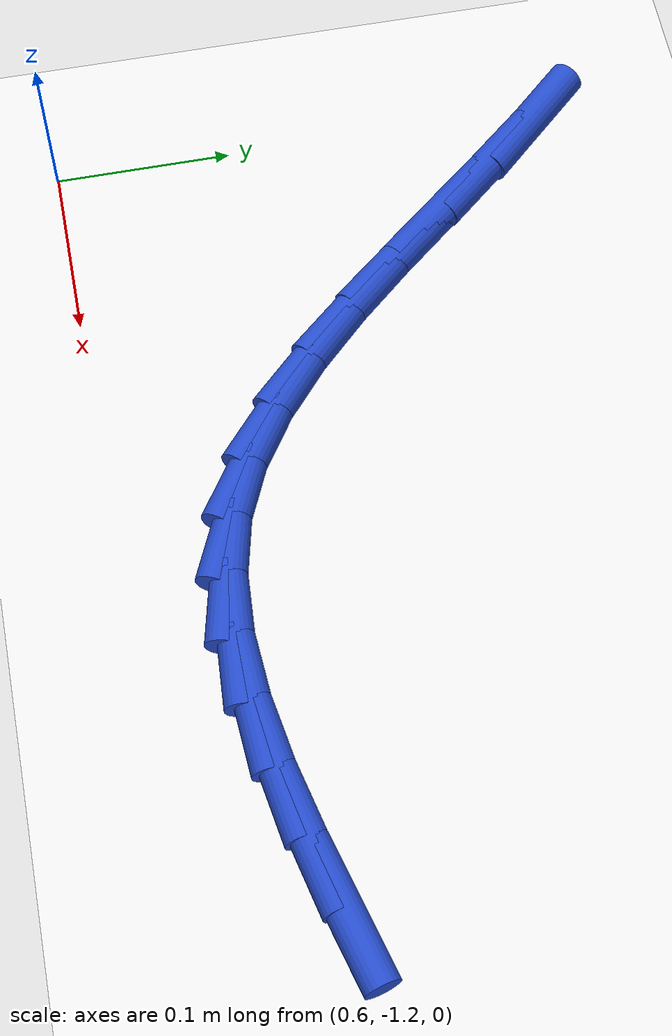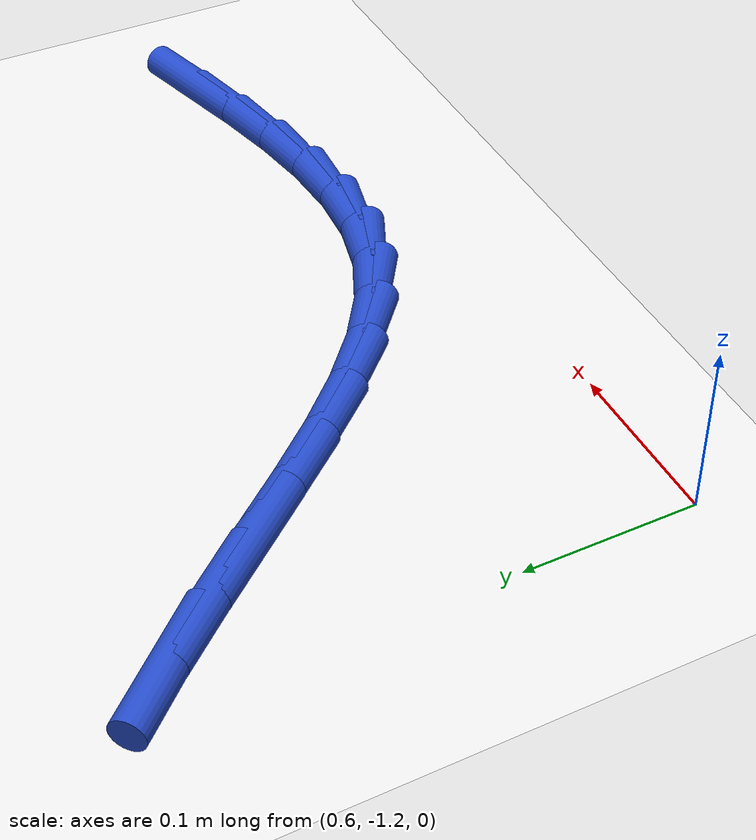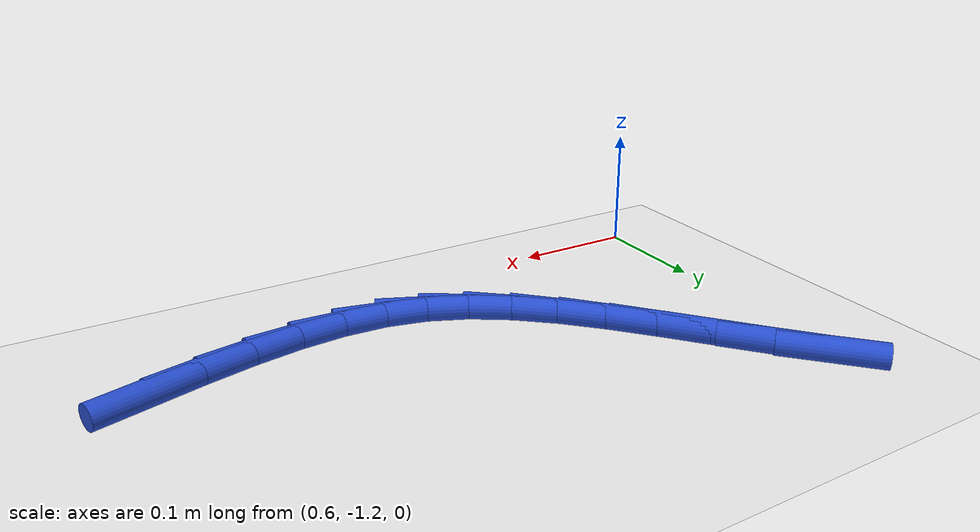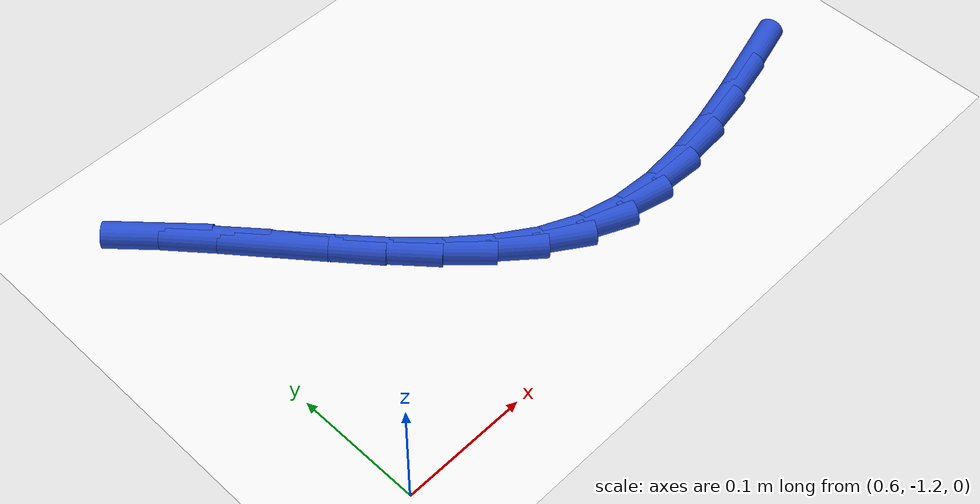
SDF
<sdf version="1.6">
 <world name="default">
  <model name="ground_plane">
   <static>1</static>
   <link name="link">
    <collision name="collision">
     <geometry><plane><normal>0 0 1</normal><size>100 100</size></plane></geometry>
     <surface><friction><ode><mu>100</mu><mu2>50</mu2></ode></friction></surface>
    </collision>
    <visual name="visual">
     <cast_shadows>0</cast_shadows>
     <geometry><plane><normal>0 0 1</normal><size>100 100</size></plane></geometry>
     <material>
      <script><uri>file://media/materials/scripts/gazebo.material</uri><name>Gazebo/WhiteGlow</name></script>
     </material>
    </visual>
   </link>
  </model>
  <model name="line">
   <link name="link_136">
    <pose>1.053739396247536 -1.1162604444174817 0.01 0 1.57 0.2706044850605791</pose>
    <collision name="collision">
     <geometry><cylinder><radius>0.01</radius><length>0.08</length></cylinder></geometry>
    </collision>
    <visual name="visual">
     <material>
      <script><name>Gazebo/Blue</name><uri>file://media/materials/scripts/gazebo.material</uri></script>
     </material>
     <geometry><cylinder><radius>0.01</radius><length>0.08</length></cylinder></geometry>
    </visual>
   </link>
   <link name="link_137">
    <pose>1.0143702502885477 -1.1271818010287915 0.01 0 1.57 0.23141501904220652</pose>
    <collision name="collision">
     <geometry><cylinder><radius>0.01</radius><length>0.08</length></cylinder></geometry>
    </collision>
    <visual name="visual">
     <material>
      <script><name>Gazebo/Blue</name><uri>file://media/materials/scripts/gazebo.material</uri></script>
     </material>
     <geometry><cylinder><radius>0.01</radius><length>0.08</length></cylinder></geometry>
    </visual>
   </link>
   <link name="link_138">
    <pose>0.9760477805646333 -1.1362119718581194 0.01 0 1.57 0.16646559746946743</pose>
    <collision name="collision">
     <geometry><cylinder><radius>0.01</radius><length>0.08</length></cylinder></geometry>
    </collision>
    <visual name="visual">
     <material>
      <script><name>Gazebo/Blue</name><uri>file://media/materials/scripts/gazebo.material</uri></script>
     </material>
     <geometry><cylinder><radius>0.01</radius><length>0.08</length></cylinder></geometry>
    </visual>
   </link>
   <link name="link_139">
    <pose>0.938943400566915 -1.142446267066984 0.01 0 1.57 0.07082459915335826</pose>
    <collision name="collision">
     <geometry><cylinder><radius>0.01</radius><length>0.08</length></cylinder></geometry>
    </collision>
    <visual name="visual">
     <material>
      <script><name>Gazebo/Blue</name><uri>file://media/materials/scripts/gazebo.material</uri></script>
     </material>
     <geometry><cylinder><radius>0.01</radius><length>0.08</length></cylinder></geometry>
    </visual>
   </link>
   <link name="link_140">
    <pose>0.9032285237865163 -1.1449799968169039 0.01 0 1.57 -0.060578361564184405</pose>
    <collision name="collision">
     <geometry><cylinder><radius>0.01</radius><length>0.08</length></cylinder></geometry>
    </collision>
    <visual name="visual">
     <material>
      <script><name>Gazebo/Blue</name><uri>file://media/materials/scripts/gazebo.material</uri></script>
     </material>
     <geometry><cylinder><radius>0.01</radius><length>0.08</length></cylinder></geometry>
    </visual>
   </link>
   <link name="link_141">
    <pose>0.86907456371456 -1.1429084712693982 0.01 0 1.57 -0.22971229024223547</pose>
    <collision name="collision">
     <geometry><cylinder><radius>0.01</radius><length>0.08</length></cylinder></geometry>
    </collision>
    <visual name="visual">
     <material>
      <script><name>Gazebo/Blue</name><uri>file://media/materials/scripts/gazebo.material</uri></script>
     </material>
     <geometry><cylinder><radius>0.01</radius><length>0.08</length></cylinder></geometry>
    </visual>
   </link>
   <link name="link_142">
    <pose>0.8366529338421691 -1.1353270005859852 0.01 0 1.57 -0.42273680012714526</pose>
    <collision name="collision">
     <geometry><cylinder><radius>0.01</radius><length>0.08</length></cylinder></geometry>
    </collision>
    <visual name="visual">
     <material>
      <script><name>Gazebo/Blue</name><uri>file://media/materials/scripts/gazebo.material</uri></script>
     </material>
     <geometry><cylinder><radius>0.01</radius><length>0.08</length></cylinder></geometry>
    </visual>
   </link>
   <link name="link_143">
    <pose>0.8060672373996116 -1.1215677447723171 0.01 0 1.57 -0.588426385025156</pose>
    <collision name="collision">
     <geometry><cylinder><radius>0.01</radius><length>0.08</length></cylinder></geometry>
    </collision>
    <visual name="visual">
     <material>
      <script><name>Gazebo/Blue</name><uri>file://media/materials/scripts/gazebo.material</uri></script>
     </material>
     <geometry><cylinder><radius>0.01</radius><length>0.08</length></cylinder></geometry>
    </visual>
   </link>
   <link name="link_144">
    <pose>0.7770629378885274 -1.1022137857127163 0.01 0 1.57 -0.7113085506066607</pose>
    <collision name="collision">
     <geometry><cylinder><radius>0.01</radius><length>0.08</length></cylinder></geometry>
    </collision>
    <visual name="visual">
     <material>
      <script><name>Gazebo/Blue</name><uri>file://media/materials/scripts/gazebo.material</uri></script>
     </material>
     <geometry><cylinder><radius>0.01</radius><length>0.08</length></cylinder></geometry>
    </visual>
   </link>
   <link name="link_145">
    <pose>0.7492676973211968 -1.0782596660946513 0.01 0 1.57 -0.7964197275249545</pose>
    <collision name="collision">
     <geometry><cylinder><radius>0.01</radius><length>0.08</length></cylinder></geometry>
    </collision>
    <visual name="visual">
     <material>
      <script><name>Gazebo/Blue</name><uri>file://media/materials/scripts/gazebo.material</uri></script>
     </material>
     <geometry><cylinder><radius>0.01</radius><length>0.08</length></cylinder></geometry>
    </visual>
   </link>
   <link name="link_146">
    <pose>0.7223091067011461 -1.0507001766272401 0.01 0 1.57 -0.850175608605772</pose>
    <collision name="collision">
     <geometry><cylinder><radius>0.01</radius><length>0.08</length></cylinder></geometry>
    </collision>
    <visual name="visual">
     <material>
      <script><name>Gazebo/Blue</name><uri>file://media/materials/scripts/gazebo.material</uri></script>
     </material>
     <geometry><cylinder><radius>0.01</radius><length>0.08</length></cylinder></geometry>
    </visual>
   </link>
   <link name="link_147">
    <pose>0.6958147570319002 -1.0205301080195999 0.01 0 1.57 -0.8776512773962937</pose>
    <collision name="collision">
     <geometry><cylinder><radius>0.01</radius><length>0.08</length></cylinder></geometry>
    </collision>
    <visual name="visual">
     <material>
      <script><name>Gazebo/Blue</name><uri>file://media/materials/scripts/gazebo.material</uri></script>
     </material>
     <geometry><cylinder><radius>0.01</radius><length>0.08</length></cylinder></geometry>
    </visual>
   </link>
   <link name="link_148">
    <pose>0.6694122393169843 -0.9887442509808466 0.01 0 1.57 -0.8819621036383108</pose>
    <collision name="collision">
     <geometry><cylinder><radius>0.01</radius><length>0.08</length></cylinder></geometry>
    </collision>
    <visual name="visual">
     <material>
      <script><name>Gazebo/Blue</name><uri>file://media/materials/scripts/gazebo.material</uri></script>
     </material>
     <geometry><cylinder><radius>0.01</radius><length>0.08</length></cylinder></geometry>
    </visual>
   </link>
   <link name="link_149">
    <pose>0.6427291445599247 -0.9563373962200988 0.01 0 1.57 -0.8643485692104246</pose>
    <collision name="collision">
     <geometry><cylinder><radius>0.01</radius><length>0.08</length></cylinder></geometry>
    </collision>
    <visual name="visual">
     <material>
      <script><name>Gazebo/Blue</name><uri>file://media/materials/scripts/gazebo.material</uri></script>
     </material>
     <geometry><cylinder><radius>0.01</radius><length>0.08</length></cylinder></geometry>
    </visual>
   </link>
   <link name="link_150">
    <pose>0.6153930637642466 -0.9243043344464733 0.01 0 1.57 -0.8243951559704429</pose>
    <collision name="collision">
     <geometry><cylinder><radius>0.01</radius><length>0.08</length></cylinder></geometry>
    </collision>
    <visual name="visual">
     <material>
      <script><name>Gazebo/Blue</name><uri>file://media/materials/scripts/gazebo.material</uri></script>
     </material>
     <geometry><cylinder><radius>0.01</radius><length>0.08</length></cylinder></geometry>
    </visual>
   </link>
  </model>
 </world>
</sdf>
